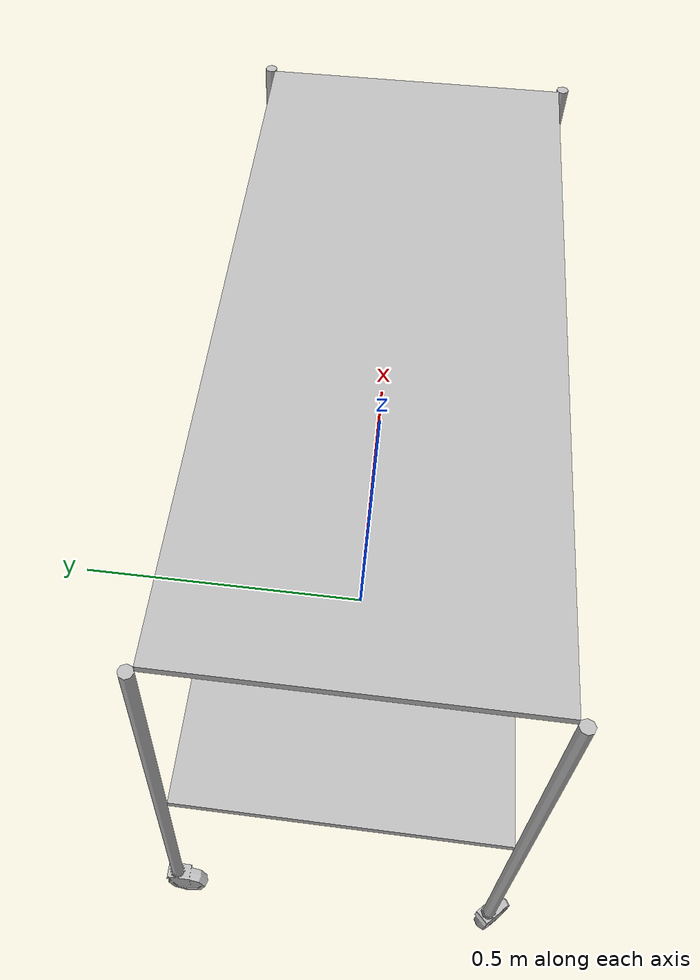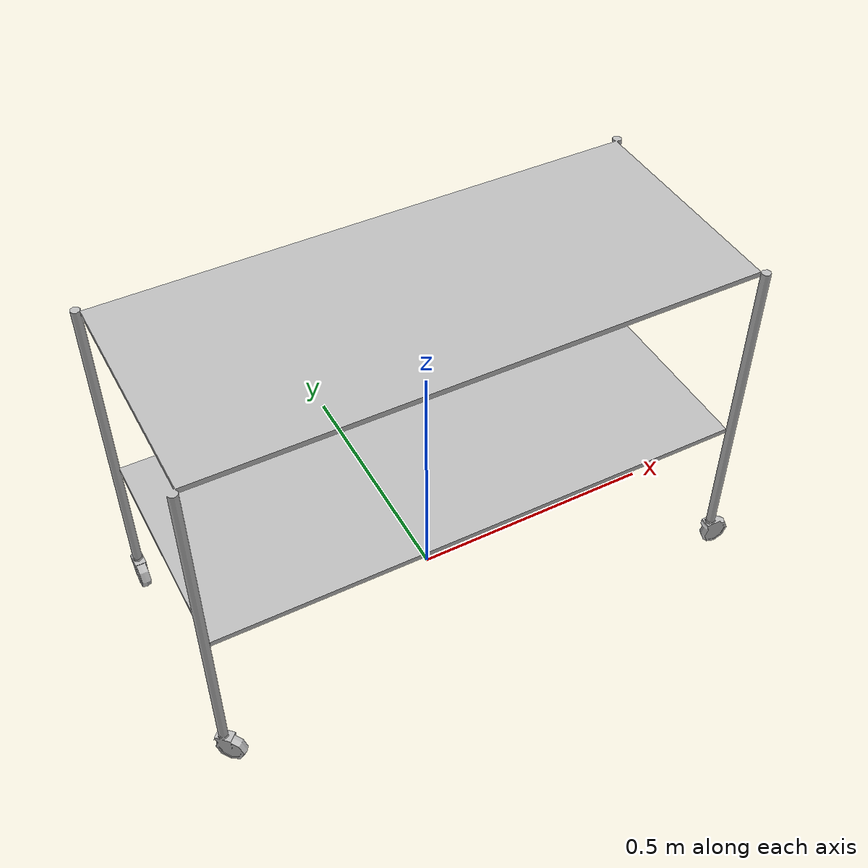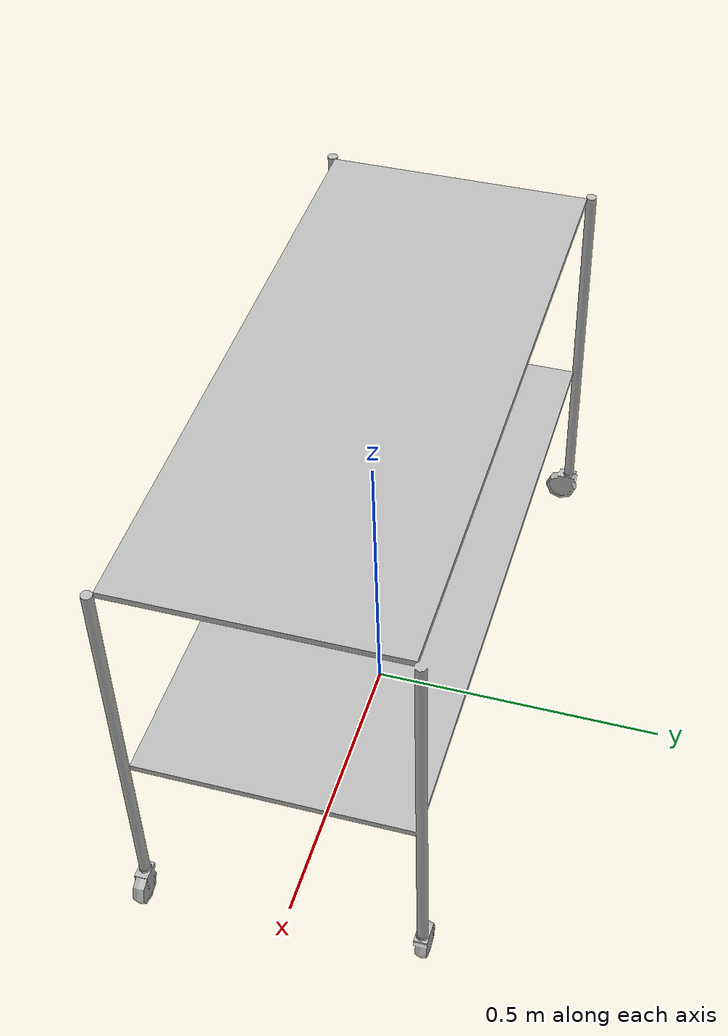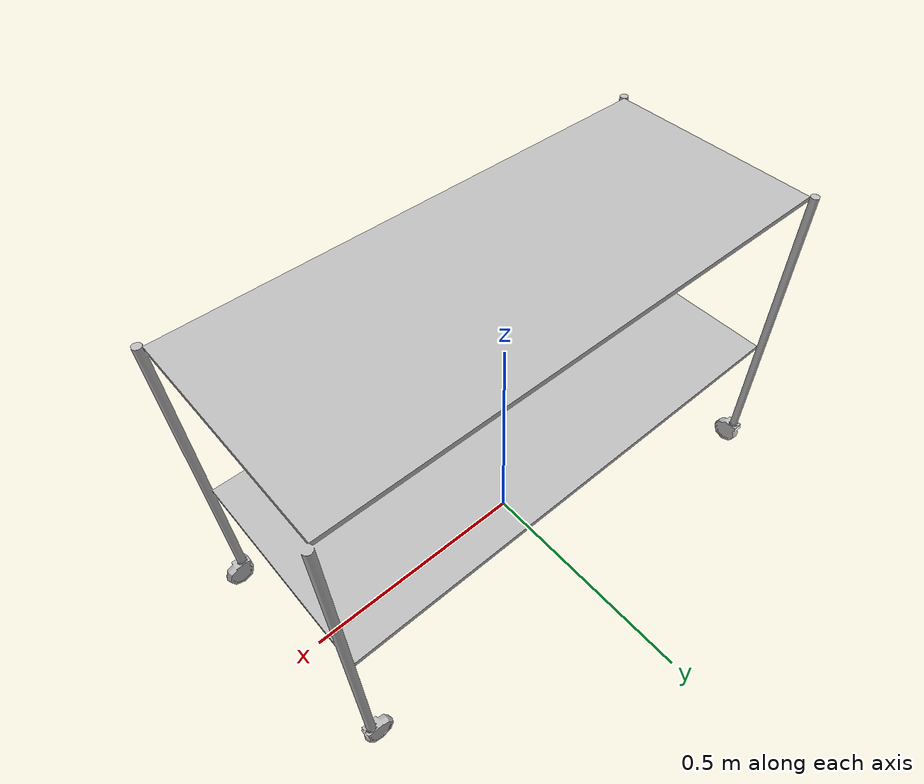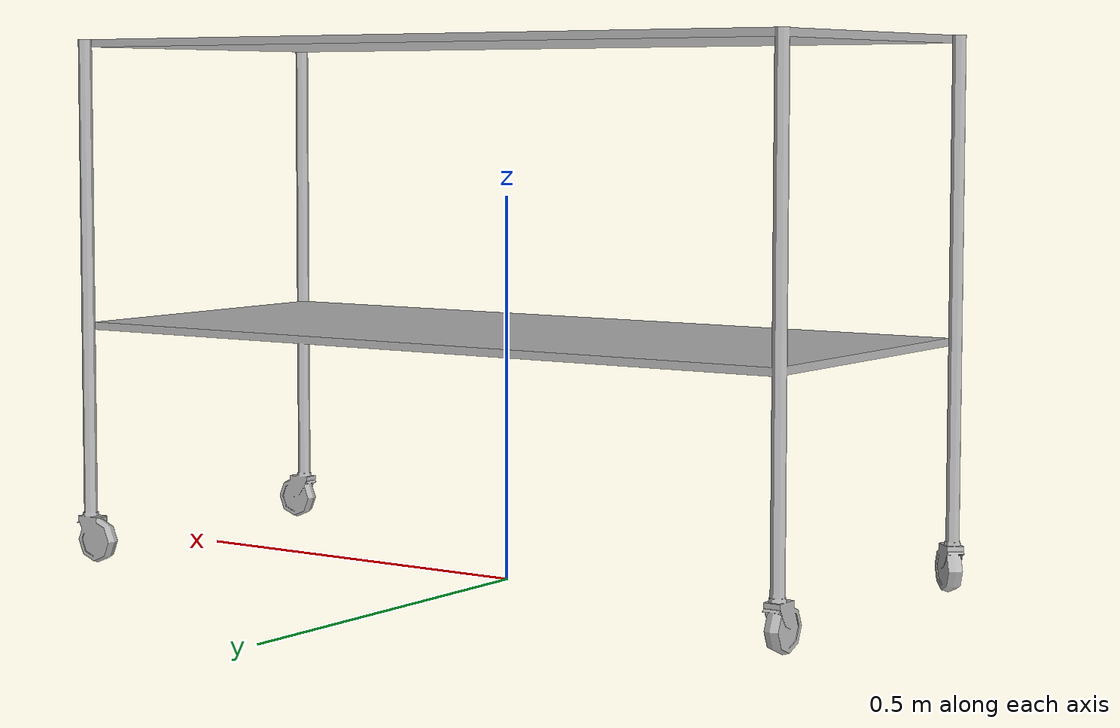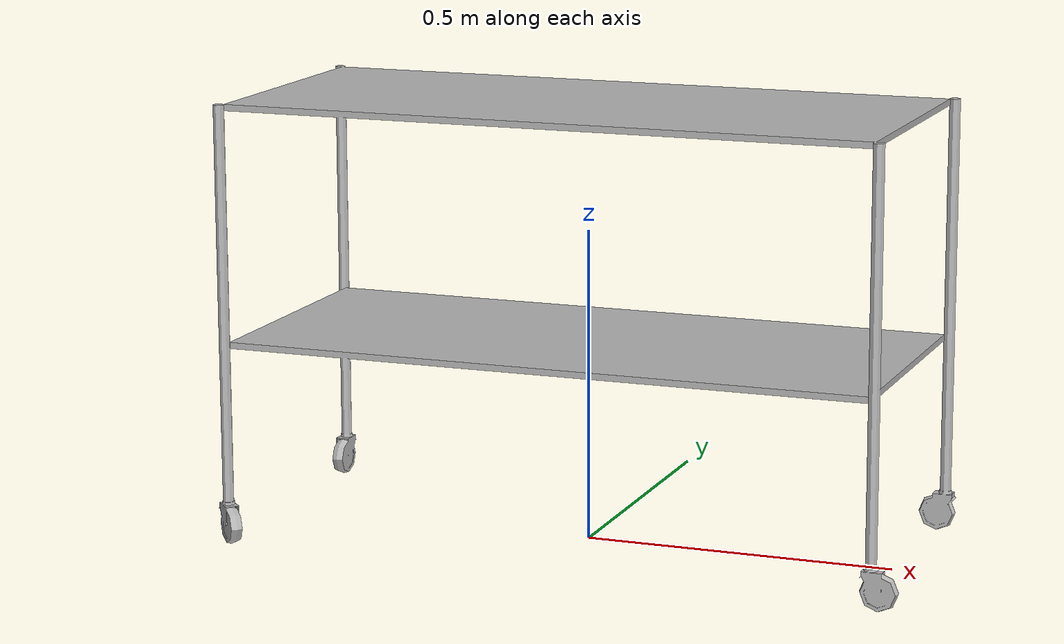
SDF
<?xml version='1.0' encoding='utf-8'?>
<sdf version="1.6">
  <model name="SurgicalTrolleyMed">
   <static>true</static>
    <link name="body">
      <pose>0 0 0 0 0 0</pose>

      <visual name="visual">
        <geometry>
          <mesh>
            <uri>model://SurgicalTrolleyMed/meshes/SurgicalTrolleyMed.obj</uri>
          </mesh>
        </geometry>
      </visual>

      <collision name="collision">
        <geometry>
          <mesh>
            <uri>model://SurgicalTrolleyMed/meshes/SurgicalTrolleyMed_Col.obj</uri>
          </mesh>
        </geometry>
      </collision>

    </link>
  </model>
</sdf>
